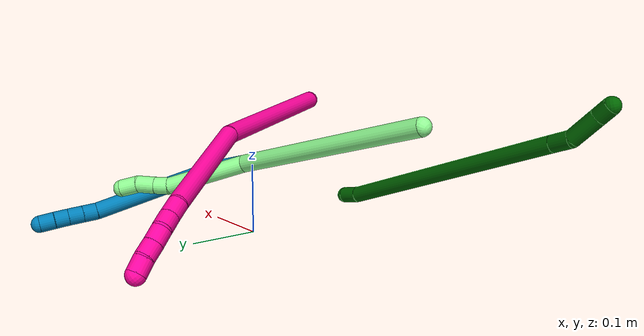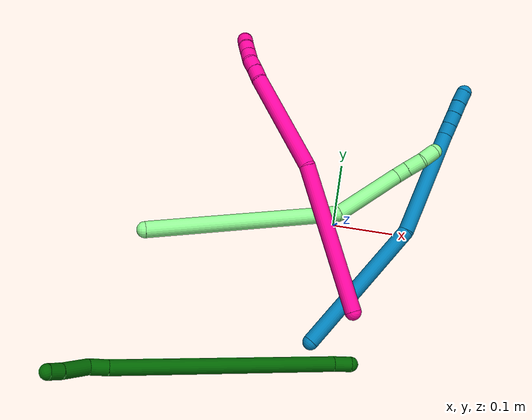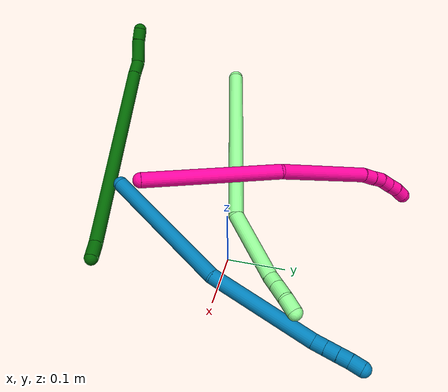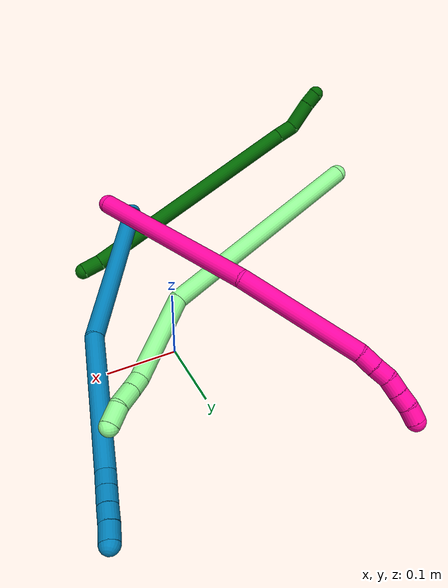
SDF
<sdf version="1.7">
 <world name="default">
  <model name="photoneo_s_sensor">
   <static>1</static>
   <pose>0 0 2 1.57079 1.57079 3.14159</pose>
   <link name="link">
    <inertial><mass>0.1</mass></inertial>
    <sensor name="sensor" type="depth">
     <update_rate>30</update_rate>
     <camera>
      <horizontal_fov>1.22</horizontal_fov>
      <image><width>1920</width><height>1200</height><format>B8G8R8</format></image>
      <clip><near>0.1</near><far>4</far></clip>
      <depth_camera><output>points</output></depth_camera>
     </camera>
     <plugin name="camera_plugin" filename="libgazebo_ros_depth_camera.so">
      <baseline>0.2</baseline>
      <alwaysOn>1</alwaysOn>
      <updateRate>0.0</updateRate>
      <cameraName>camera_ir</cameraName>
      <imageTopicName>/camera/color/image_raw</imageTopicName>
      <cameraInfoTopicName>/camera/color/camera_info</cameraInfoTopicName>
      <depthImageTopicName>/camera/depth/image_raw</depthImageTopicName>
      <depthImageCameraInfoTopicName>/camera/depth/camera_info</depthImageCameraInfoTopicName>
      <pointCloudTopicName>/camera/depth/points</pointCloudTopicName>
      <frameName>fr_optical</frameName>
      <pointCloudCutoff>0.1</pointCloudCutoff>
      <pointCloudCutoffMax>2.0</pointCloudCutoffMax>
      <distortionK1>0</distortionK1>
      <distortionK2>0</distortionK2>
      <distortionK3>0</distortionK3>
      <distortionT1>0</distortionT1>
      <distortionT2>0</distortionT2>
      <CxPrime>0</CxPrime>
      <Cx>0</Cx>
      <Cy>0</Cy>
      <focalLength>0</focalLength>
      <hackBaseline>0</hackBaseline>
     </plugin>
    </sensor>
   </link>
  </model>
  <model name="bin">
   <static>1</static>
   <link name="bottom">
    <collision name="collision-bottom">
     <pose>0 0 -0.01 0 -0 0</pose>
     <geometry><box><size>0.8 0.6 0.02</size></box></geometry>
     <surface>
      <friction><ode><mu>100</mu><mu2>100</mu2></ode></friction>
      <contact><collide_bitmask>65535</collide_bitmask></contact>
     </surface>
    </collision>
   </link>
   <link name="west_wall">
    <collision name="collision-west_wall">
     <pose>-0.41 0 0.1 0 -0 0</pose>
     <geometry><box><size>0.02 0.6 0.2</size></box></geometry>
     <surface>
      <friction><ode><mu>100</mu><mu2>100</mu2></ode></friction>
      <contact><collide_bitmask>65535</collide_bitmask></contact>
     </surface>
    </collision>
   </link>
   <link name="east_wall">
    <collision name="collision-east_wall">
     <pose>0.41 0 0.1 0 -0 0</pose>
     <geometry><box><size>0.02 0.6 0.2</size></box></geometry>
     <surface>
      <friction><ode><mu>100</mu><mu2>100</mu2></ode></friction>
      <contact><collide_bitmask>65535</collide_bitmask></contact>
     </surface>
    </collision>
   </link>
   <link name="south_wall">
    <collision name="collision-south_wall">
     <pose>0 -0.31 0.1 0 -0 0</pose>
     <geometry><box><size>0.8 0.02 0.2</size></box></geometry>
     <surface>
      <friction><ode><mu>100</mu><mu2>100</mu2></ode></friction>
      <contact><collide_bitmask>65535</collide_bitmask></contact>
     </surface>
    </collision>
   </link>
   <link name="north_wall">
    <collision name="collision-north_wall">
     <pose>0 0.31 0.1 0 -0 0</pose>
     <geometry><box><size>0.8 0.02 0.2</size></box></geometry>
     <surface>
      <friction><ode><mu>100</mu><mu2>100</mu2></ode></friction>
      <contact><collide_bitmask>65535</collide_bitmask></contact>
     </surface>
    </collision>
   </link>
  </model>
  <model name="6">
   <static>0</static>
   <link name="6">
    <collision name="collision-cylinder-e_1_1_4">
     <pose>-0.004829 -0.003568 0.013738 0.254129 -0.327934 -0.042268</pose>
     <geometry><cylinder><radius>0.0125</radius><length>0.029986</length></cylinder></geometry>
     <surface>
      <friction><ode><mu>1.16</mu><mu2>1.16</mu2><slip1>0</slip1><slip2>0</slip2></ode></friction>
      <contact><ode><kp>1e+06</kp><kd>1</kd><max_vel>0</max_vel><min_depth>0.001</min_depth></ode></contact>
     </surface>
    </collision>
    <visual name="visual-cylinder-e_1_1_4">
     <pose>-0.004829 -0.003568 0.013738 0.254129 -0.327934 -0.042268</pose>
     <geometry><cylinder><radius>0.0125</radius><length>0.029986</length></cylinder></geometry>
     <material><ambient>0 0.392157 0.003922 1</ambient></material>
    </visual>
    <collision name="collision-cylinder-e_2_4_5">
     <pose>-0.079361 -0.023447 0.198653 0.094996 -0.385119 -0.018535</pose>
     <geometry><cylinder><radius>0.0125</radius><length>0.371084</length></cylinder></geometry>
     <surface>
      <friction><ode><mu>1.16</mu><mu2>1.16</mu2><slip1>0</slip1><slip2>0</slip2></ode></friction>
      <contact><ode><kp>1e+06</kp><kd>1</kd><max_vel>0</max_vel><min_depth>0.001</min_depth></ode></contact>
     </surface>
    </collision>
    <visual name="visual-cylinder-e_2_4_5">
     <pose>-0.079361 -0.023447 0.198653 0.094996 -0.385119 -0.018535</pose>
     <geometry><cylinder><radius>0.0125</radius><length>0.371084</length></cylinder></geometry>
     <material><ambient>0 0.392157 0.003922 1</ambient></material>
    </visual>
    <collision name="collision-cylinder-e_3_5_6">
     <pose>-0.155457 -0.041521 0.383361 0.129631 -0.438204 -0.028904</pose>
     <geometry><cylinder><radius>0.0125</radius><length>0.030139</length></cylinder></geometry>
     <surface>
      <friction><ode><mu>1.16</mu><mu2>1.16</mu2><slip1>0</slip1><slip2>0</slip2></ode></friction>
      <contact><ode><kp>1e+06</kp><kd>1</kd><max_vel>0</max_vel><min_depth>0.001</min_depth></ode></contact>
     </surface>
    </collision>
    <visual name="visual-cylinder-e_3_5_6">
     <pose>-0.155457 -0.041521 0.383361 0.129631 -0.438204 -0.028904</pose>
     <geometry><cylinder><radius>0.0125</radius><length>0.030139</length></cylinder></geometry>
     <material><ambient>0 0.392157 0.003922 1</ambient></material>
    </visual>
    <collision name="collision-cylinder-e_4_6_7">
     <pose>-0.171754 -0.03587 0.416288 -0.365124 -0.444973 0.083484</pose>
     <geometry><cylinder><radius>0.0125</radius><length>0.046011</length></cylinder></geometry>
     <surface>
      <friction><ode><mu>1.16</mu><mu2>1.16</mu2><slip1>0</slip1><slip2>0</slip2></ode></friction>
      <contact><ode><kp>1e+06</kp><kd>1</kd><max_vel>0</max_vel><min_depth>0.001</min_depth></ode></contact>
     </surface>
    </collision>
    <visual name="visual-cylinder-e_4_6_7">
     <pose>-0.171754 -0.03587 0.416288 -0.365124 -0.444973 0.083484</pose>
     <geometry><cylinder><radius>0.0125</radius><length>0.046011</length></cylinder></geometry>
     <material><ambient>0 0.392157 0.003922 1</ambient></material>
    </visual>
    <collision name="collision-cylinder-e_5_7_2">
     <pose>-0.187544 -0.025486 0.444972 -0.309536 -0.543233 0.086846</pose>
     <geometry><cylinder><radius>0.0125</radius><length>0.022779</length></cylinder></geometry>
     <surface>
      <friction><ode><mu>1.16</mu><mu2>1.16</mu2><slip1>0</slip1><slip2>0</slip2></ode></friction>
      <contact><ode><kp>1e+06</kp><kd>1</kd><max_vel>0</max_vel><min_depth>0.001</min_depth></ode></contact>
     </surface>
    </collision>
    <visual name="visual-cylinder-e_5_7_2">
     <pose>-0.187544 -0.025486 0.444972 -0.309536 -0.543233 0.086846</pose>
     <geometry><cylinder><radius>0.0125</radius><length>0.022779</length></cylinder></geometry>
     <material><ambient>0 0.392157 0.003922 1</ambient></material>
    </visual>
    <collision name="collision-sphere-2">
     <pose>-0.193431 -0.022516 0.454258 0 -0 0</pose>
     <geometry><sphere><radius>0.0125</radius></sphere></geometry>
     <surface>
      <friction><ode><mu>1.16</mu><mu2>1.16</mu2><slip1>0</slip1><slip2>0</slip2></ode></friction>
      <contact><ode><kp>1e+06</kp><kd>1</kd><max_vel>0</max_vel><min_depth>0.001</min_depth></ode></contact>
     </surface>
    </collision>
    <visual name="visual-sphere-2">
     <pose>-0.193431 -0.022516 0.454258 0 -0 0</pose>
     <geometry><sphere><radius>0.0125</radius></sphere></geometry>
     <material><ambient>0 0.392157 0.003922 1</ambient></material>
    </visual>
    <collision name="collision-sphere-7">
     <pose>-0.181656 -0.028456 0.435685 0 -0 0</pose>
     <geometry><sphere><radius>0.0125</radius></sphere></geometry>
     <surface>
      <friction><ode><mu>1.16</mu><mu2>1.16</mu2><slip1>0</slip1><slip2>0</slip2></ode></friction>
      <contact><ode><kp>1e+06</kp><kd>1</kd><max_vel>0</max_vel><min_depth>0.001</min_depth></ode></contact>
     </surface>
    </collision>
    <visual name="visual-sphere-7">
     <pose>-0.181656 -0.028456 0.435685 0 -0 0</pose>
     <geometry><sphere><radius>0.0125</radius></sphere></geometry>
     <material><ambient>0 0.392157 0.003922 1</ambient></material>
    </visual>
    <collision name="collision-sphere-6">
     <pose>-0.161852 -0.043285 0.396892 0 -0 0</pose>
     <geometry><sphere><radius>0.0125</radius></sphere></geometry>
     <surface>
      <friction><ode><mu>1.16</mu><mu2>1.16</mu2><slip1>0</slip1><slip2>0</slip2></ode></friction>
      <contact><ode><kp>1e+06</kp><kd>1</kd><max_vel>0</max_vel><min_depth>0.001</min_depth></ode></contact>
     </surface>
    </collision>
    <visual name="visual-sphere-6">
     <pose>-0.161852 -0.043285 0.396892 0 -0 0</pose>
     <geometry><sphere><radius>0.0125</radius></sphere></geometry>
     <material><ambient>0 0.392157 0.003922 1</ambient></material>
    </visual>
    <collision name="collision-sphere-5">
     <pose>-0.149063 -0.039757 0.36983 0 -0 0</pose>
     <geometry><sphere><radius>0.0125</radius></sphere></geometry>
     <surface>
      <friction><ode><mu>1.16</mu><mu2>1.16</mu2><slip1>0</slip1><slip2>0</slip2></ode></friction>
      <contact><ode><kp>1e+06</kp><kd>1</kd><max_vel>0</max_vel><min_depth>0.001</min_depth></ode></contact>
     </surface>
    </collision>
    <visual name="visual-sphere-5">
     <pose>-0.149063 -0.039757 0.36983 0 -0 0</pose>
     <geometry><sphere><radius>0.0125</radius></sphere></geometry>
     <material><ambient>0 0.392157 0.003922 1</ambient></material>
    </visual>
    <collision name="collision-sphere-1">
     <geometry><sphere><radius>0.0125</radius></sphere></geometry>
     <surface>
      <friction><ode><mu>1.16</mu><mu2>1.16</mu2><slip1>0</slip1><slip2>0</slip2></ode></friction>
      <contact><ode><kp>1e+06</kp><kd>1</kd><max_vel>0</max_vel><min_depth>0.001</min_depth></ode></contact>
     </surface>
    </collision>
    <visual name="visual-sphere-1">
     <geometry><sphere><radius>0.0125</radius></sphere></geometry>
     <material><ambient>0 0.392157 0.003922 1</ambient></material>
    </visual>
    <collision name="collision-sphere-4">
     <pose>-0.009658 -0.007137 0.027477 0 -0 0</pose>
     <geometry><sphere><radius>0.0125</radius></sphere></geometry>
     <surface>
      <friction><ode><mu>1.16</mu><mu2>1.16</mu2><slip1>0</slip1><slip2>0</slip2></ode></friction>
      <contact><ode><kp>1e+06</kp><kd>1</kd><max_vel>0</max_vel><min_depth>0.001</min_depth></ode></contact>
     </surface>
    </collision>
    <visual name="visual-sphere-4">
     <pose>-0.009658 -0.007137 0.027477 0 -0 0</pose>
     <geometry><sphere><radius>0.0125</radius></sphere></geometry>
     <material><ambient>0 0.392157 0.003922 1</ambient></material>
    </visual>
    <inertial>
     <pose>-0.092909 -0.02458 0.229946 0 -0 0</pose>
     <mass>0.5</mass>
     <inertia>
      <ixx>0.003888</ixx>
      <ixy>0</ixy>
      <ixz>0</ixz>
      <iyy>0.004199</iyy>
      <iyz>0</iyz>
      <izz>0.002022</izz>
     </inertia>
    </inertial>
   </link>
   <pose>0.061751 -0.223973 0.011529 1.26748 0.503784 -1.19303</pose>
  </model>
  <model name="9">
   <static>0</static>
   <link name="9">
    <collision name="collision-cylinder-e_1_1_4">
     <pose>0.008374 -0.001356 0.116958 0.011593 0.071474 0.000414</pose>
     <geometry><cylinder><radius>0.0125</radius><length>0.23453</length></cylinder></geometry>
     <surface>
      <friction><ode><mu>1.16</mu><mu2>1.16</mu2><slip1>0</slip1><slip2>0</slip2></ode></friction>
      <contact><ode><kp>1e+06</kp><kd>1</kd><max_vel>0</max_vel><min_depth>0.001</min_depth></ode></contact>
     </surface>
    </collision>
    <visual name="visual-cylinder-e_1_1_4">
     <pose>0.008374 -0.001356 0.116958 0.011593 0.071474 0.000414</pose>
     <geometry><cylinder><radius>0.0125</radius><length>0.23453</length></cylinder></geometry>
     <material><ambient>0 0.490196 0.709804 1</ambient></material>
    </visual>
    <collision name="collision-cylinder-e_2_4_5">
     <pose>0.014217 0.022747 0.321392 -0.283211 -0.027781 0.003961</pose>
     <geometry><cylinder><radius>0.0125</radius><length>0.182284</length></cylinder></geometry>
     <surface>
      <friction><ode><mu>1.16</mu><mu2>1.16</mu2><slip1>0</slip1><slip2>0</slip2></ode></friction>
      <contact><ode><kp>1e+06</kp><kd>1</kd><max_vel>0</max_vel><min_depth>0.001</min_depth></ode></contact>
     </surface>
    </collision>
    <visual name="visual-cylinder-e_2_4_5">
     <pose>0.014217 0.022747 0.321392 -0.283211 -0.027781 0.003961</pose>
     <geometry><cylinder><radius>0.0125</radius><length>0.182284</length></cylinder></geometry>
     <material><ambient>0 0.490196 0.709804 1</ambient></material>
    </visual>
    <collision name="collision-cylinder-e_3_5_6">
     <pose>0.010219 0.050167 0.418648 -0.197927 -0.145978 0.014519</pose>
     <geometry><cylinder><radius>0.0125</radius><length>0.02016</length></cylinder></geometry>
     <surface>
      <friction><ode><mu>1.16</mu><mu2>1.16</mu2><slip1>0</slip1><slip2>0</slip2></ode></friction>
      <contact><ode><kp>1e+06</kp><kd>1</kd><max_vel>0</max_vel><min_depth>0.001</min_depth></ode></contact>
     </surface>
    </collision>
    <visual name="visual-cylinder-e_3_5_6">
     <pose>0.010219 0.050167 0.418648 -0.197927 -0.145978 0.014519</pose>
     <geometry><cylinder><radius>0.0125</radius><length>0.02016</length></cylinder></geometry>
     <material><ambient>0 0.490196 0.709804 1</ambient></material>
    </visual>
    <collision name="collision-cylinder-e_4_6_7">
     <pose>0.007209 0.054195 0.438751 -0.197539 -0.14558 0.014451</pose>
     <geometry><cylinder><radius>0.0125</radius><length>0.021285</length></cylinder></geometry>
     <surface>
      <friction><ode><mu>1.16</mu><mu2>1.16</mu2><slip1>0</slip1><slip2>0</slip2></ode></friction>
      <contact><ode><kp>1e+06</kp><kd>1</kd><max_vel>0</max_vel><min_depth>0.001</min_depth></ode></contact>
     </surface>
    </collision>
    <visual name="visual-cylinder-e_4_6_7">
     <pose>0.007209 0.054195 0.438751 -0.197539 -0.14558 0.014451</pose>
     <geometry><cylinder><radius>0.0125</radius><length>0.021285</length></cylinder></geometry>
     <material><ambient>0 0.490196 0.709804 1</ambient></material>
    </visual>
    <collision name="collision-cylinder-e_5_7_8">
     <pose>0.004256 0.0585 0.458794 -0.226439 -0.14035 0.015984</pose>
     <geometry><cylinder><radius>0.0125</radius><length>0.020144</length></cylinder></geometry>
     <surface>
      <friction><ode><mu>1.16</mu><mu2>1.16</mu2><slip1>0</slip1><slip2>0</slip2></ode></friction>
      <contact><ode><kp>1e+06</kp><kd>1</kd><max_vel>0</max_vel><min_depth>0.001</min_depth></ode></contact>
     </surface>
    </collision>
    <visual name="visual-cylinder-e_5_7_8">
     <pose>0.004256 0.0585 0.458794 -0.226439 -0.14035 0.015984</pose>
     <geometry><cylinder><radius>0.0125</radius><length>0.020144</length></cylinder></geometry>
     <material><ambient>0 0.490196 0.709804 1</ambient></material>
    </visual>
    <collision name="collision-cylinder-e_6_8_2">
     <pose>0.001977 0.062779 0.479082 -0.19064 -0.080628 0.007713</pose>
     <geometry><cylinder><radius>0.0125</radius><length>0.021598</length></cylinder></geometry>
     <surface>
      <friction><ode><mu>1.16</mu><mu2>1.16</mu2><slip1>0</slip1><slip2>0</slip2></ode></friction>
      <contact><ode><kp>1e+06</kp><kd>1</kd><max_vel>0</max_vel><min_depth>0.001</min_depth></ode></contact>
     </surface>
    </collision>
    <visual name="visual-cylinder-e_6_8_2">
     <pose>0.001977 0.062779 0.479082 -0.19064 -0.080628 0.007713</pose>
     <geometry><cylinder><radius>0.0125</radius><length>0.021598</length></cylinder></geometry>
     <material><ambient>0 0.490196 0.709804 1</ambient></material>
    </visual>
    <collision name="collision-sphere-2">
     <pose>0.001107 0.064818 0.48965 0 -0 0</pose>
     <geometry><sphere><radius>0.0125</radius></sphere></geometry>
     <surface>
      <friction><ode><mu>1.16</mu><mu2>1.16</mu2><slip1>0</slip1><slip2>0</slip2></ode></friction>
      <contact><ode><kp>1e+06</kp><kd>1</kd><max_vel>0</max_vel><min_depth>0.001</min_depth></ode></contact>
     </surface>
    </collision>
    <visual name="visual-sphere-2">
     <pose>0.001107 0.064818 0.48965 0 -0 0</pose>
     <geometry><sphere><radius>0.0125</radius></sphere></geometry>
     <material><ambient>0 0.490196 0.709804 1</ambient></material>
    </visual>
    <collision name="collision-sphere-4">
     <pose>0.016749 -0.002712 0.233915 0 -0 0</pose>
     <geometry><sphere><radius>0.0125</radius></sphere></geometry>
     <surface>
      <friction><ode><mu>1.16</mu><mu2>1.16</mu2><slip1>0</slip1><slip2>0</slip2></ode></friction>
      <contact><ode><kp>1e+06</kp><kd>1</kd><max_vel>0</max_vel><min_depth>0.001</min_depth></ode></contact>
     </surface>
    </collision>
    <visual name="visual-sphere-4">
     <pose>0.016749 -0.002712 0.233915 0 -0 0</pose>
     <geometry><sphere><radius>0.0125</radius></sphere></geometry>
     <material><ambient>0 0.490196 0.709804 1</ambient></material>
    </visual>
    <collision name="collision-sphere-1">
     <geometry><sphere><radius>0.0125</radius></sphere></geometry>
     <surface>
      <friction><ode><mu>1.16</mu><mu2>1.16</mu2><slip1>0</slip1><slip2>0</slip2></ode></friction>
      <contact><ode><kp>1e+06</kp><kd>1</kd><max_vel>0</max_vel><min_depth>0.001</min_depth></ode></contact>
     </surface>
    </collision>
    <visual name="visual-sphere-1">
     <geometry><sphere><radius>0.0125</radius></sphere></geometry>
     <material><ambient>0 0.490196 0.709804 1</ambient></material>
    </visual>
    <collision name="collision-sphere-8">
     <pose>0.002847 0.060739 0.468513 0 -0 0</pose>
     <geometry><sphere><radius>0.0125</radius></sphere></geometry>
     <surface>
      <friction><ode><mu>1.16</mu><mu2>1.16</mu2><slip1>0</slip1><slip2>0</slip2></ode></friction>
      <contact><ode><kp>1e+06</kp><kd>1</kd><max_vel>0</max_vel><min_depth>0.001</min_depth></ode></contact>
     </surface>
    </collision>
    <visual name="visual-sphere-8">
     <pose>0.002847 0.060739 0.468513 0 -0 0</pose>
     <geometry><sphere><radius>0.0125</radius></sphere></geometry>
     <material><ambient>0 0.490196 0.709804 1</ambient></material>
    </visual>
    <collision name="collision-sphere-5">
     <pose>0.011685 0.048206 0.40887 0 -0 0</pose>
     <geometry><sphere><radius>0.0125</radius></sphere></geometry>
     <surface>
      <friction><ode><mu>1.16</mu><mu2>1.16</mu2><slip1>0</slip1><slip2>0</slip2></ode></friction>
      <contact><ode><kp>1e+06</kp><kd>1</kd><max_vel>0</max_vel><min_depth>0.001</min_depth></ode></contact>
     </surface>
    </collision>
    <visual name="visual-sphere-5">
     <pose>0.011685 0.048206 0.40887 0 -0 0</pose>
     <geometry><sphere><radius>0.0125</radius></sphere></geometry>
     <material><ambient>0 0.490196 0.709804 1</ambient></material>
    </visual>
    <collision name="collision-sphere-6">
     <pose>0.008753 0.052128 0.428425 0 -0 0</pose>
     <geometry><sphere><radius>0.0125</radius></sphere></geometry>
     <surface>
      <friction><ode><mu>1.16</mu><mu2>1.16</mu2><slip1>0</slip1><slip2>0</slip2></ode></friction>
      <contact><ode><kp>1e+06</kp><kd>1</kd><max_vel>0</max_vel><min_depth>0.001</min_depth></ode></contact>
     </surface>
    </collision>
    <visual name="visual-sphere-6">
     <pose>0.008753 0.052128 0.428425 0 -0 0</pose>
     <geometry><sphere><radius>0.0125</radius></sphere></geometry>
     <material><ambient>0 0.490196 0.709804 1</ambient></material>
    </visual>
    <collision name="collision-sphere-7">
     <pose>0.005665 0.056261 0.449076 0 -0 0</pose>
     <geometry><sphere><radius>0.0125</radius></sphere></geometry>
     <surface>
      <friction><ode><mu>1.16</mu><mu2>1.16</mu2><slip1>0</slip1><slip2>0</slip2></ode></friction>
      <contact><ode><kp>1e+06</kp><kd>1</kd><max_vel>0</max_vel><min_depth>0.001</min_depth></ode></contact>
     </surface>
    </collision>
    <visual name="visual-sphere-7">
     <pose>0.005665 0.056261 0.449076 0 -0 0</pose>
     <geometry><sphere><radius>0.0125</radius></sphere></geometry>
     <material><ambient>0 0.490196 0.709804 1</ambient></material>
    </visual>
    <inertial>
     <pose>0.010087 0.017055 0.246765 0 -0 0</pose>
     <mass>0.5</mass>
     <inertia>
      <ixx>0.001602</ixx>
      <ixy>0</ixy>
      <ixz>0</ixz>
      <iyy>0.001589</iyy>
      <iyz>0</iyz>
      <izz>-0.000156</izz>
     </inertia>
    </inertial>
   </link>
   <pose>-0.015243 -0.18789 0.120003 -1.81686 0.945577 -0.733025</pose>
  </model>
  <model name="13">
   <static>0</static>
   <link name="13">
    <collision name="collision-cylinder-e_1_1_4">
     <pose>0.043556 0.061212 -0.132065 -2.70757 0.290748 -1.17234</pose>
     <geometry><cylinder><radius>0.0125</radius><length>0.303876</length></cylinder></geometry>
     <surface>
      <friction><ode><mu>1.16</mu><mu2>1.16</mu2><slip1>0</slip1><slip2>0</slip2></ode></friction>
      <contact><ode><kp>1e+06</kp><kd>1</kd><max_vel>0</max_vel><min_depth>0.001</min_depth></ode></contact>
     </surface>
    </collision>
    <visual name="visual-cylinder-e_1_1_4">
     <pose>0.043556 0.061212 -0.132065 -2.70757 0.290748 -1.17234</pose>
     <geometry><cylinder><radius>0.0125</radius><length>0.303876</length></cylinder></geometry>
     <material><ambient>0.564706 0.984314 0.572549 1</ambient></material>
    </visual>
    <collision name="collision-cylinder-e_2_4_5">
     <pose>0.128152 0.138155 -0.305091 -2.7749 0.751995 -2.26336</pose>
     <geometry><cylinder><radius>0.0125</radius><length>0.12016</length></cylinder></geometry>
     <surface>
      <friction><ode><mu>1.16</mu><mu2>1.16</mu2><slip1>0</slip1><slip2>0</slip2></ode></friction>
      <contact><ode><kp>1e+06</kp><kd>1</kd><max_vel>0</max_vel><min_depth>0.001</min_depth></ode></contact>
     </surface>
    </collision>
    <visual name="visual-cylinder-e_2_4_5">
     <pose>0.128152 0.138155 -0.305091 -2.7749 0.751995 -2.26336</pose>
     <geometry><cylinder><radius>0.0125</radius><length>0.12016</length></cylinder></geometry>
     <material><ambient>0.564706 0.984314 0.572549 1</ambient></material>
    </visual>
    <collision name="collision-cylinder-e_3_5_6">
     <pose>0.175491 0.153732 -0.354629 3.12357 0.633266 3.0866</pose>
     <geometry><cylinder><radius>0.0125</radius><length>0.021284</length></cylinder></geometry>
     <surface>
      <friction><ode><mu>1.16</mu><mu2>1.16</mu2><slip1>0</slip1><slip2>0</slip2></ode></friction>
      <contact><ode><kp>1e+06</kp><kd>1</kd><max_vel>0</max_vel><min_depth>0.001</min_depth></ode></contact>
     </surface>
    </collision>
    <visual name="visual-cylinder-e_3_5_6">
     <pose>0.175491 0.153732 -0.354629 3.12357 0.633266 3.0866</pose>
     <geometry><cylinder><radius>0.0125</radius><length>0.021284</length></cylinder></geometry>
     <material><ambient>0.564706 0.984314 0.572549 1</ambient></material>
    </visual>
    <collision name="collision-cylinder-e_4_6_7">
     <pose>0.189696 0.153199 -0.374634 3.10851 0.605093 3.03568</pose>
     <geometry><cylinder><radius>0.0125</radius><length>0.027804</length></cylinder></geometry>
     <surface>
      <friction><ode><mu>1.16</mu><mu2>1.16</mu2><slip1>0</slip1><slip2>0</slip2></ode></friction>
      <contact><ode><kp>1e+06</kp><kd>1</kd><max_vel>0</max_vel><min_depth>0.001</min_depth></ode></contact>
     </surface>
    </collision>
    <visual name="visual-cylinder-e_4_6_7">
     <pose>0.189696 0.153199 -0.374634 3.10851 0.605093 3.03568</pose>
     <geometry><cylinder><radius>0.0125</radius><length>0.027804</length></cylinder></geometry>
     <material><ambient>0.564706 0.984314 0.572549 1</ambient></material>
    </visual>
    <collision name="collision-cylinder-e_5_7_2">
     <pose>0.207107 0.155477 -0.395184 -2.85826 0.785485 -2.47847</pose>
     <geometry><cylinder><radius>0.0125</radius><length>0.026875</length></cylinder></geometry>
     <surface>
      <friction><ode><mu>1.16</mu><mu2>1.16</mu2><slip1>0</slip1><slip2>0</slip2></ode></friction>
      <contact><ode><kp>1e+06</kp><kd>1</kd><max_vel>0</max_vel><min_depth>0.001</min_depth></ode></contact>
     </surface>
    </collision>
    <visual name="visual-cylinder-e_5_7_2">
     <pose>0.207107 0.155477 -0.395184 -2.85826 0.785485 -2.47847</pose>
     <geometry><cylinder><radius>0.0125</radius><length>0.026875</length></cylinder></geometry>
     <material><ambient>0.564706 0.984314 0.572549 1</ambient></material>
    </visual>
    <collision name="collision-sphere-2">
     <pose>0.21661 0.158133 -0.404306 0 -0 0</pose>
     <geometry><sphere><radius>0.0125</radius></sphere></geometry>
     <surface>
      <friction><ode><mu>1.16</mu><mu2>1.16</mu2><slip1>0</slip1><slip2>0</slip2></ode></friction>
      <contact><ode><kp>1e+06</kp><kd>1</kd><max_vel>0</max_vel><min_depth>0.001</min_depth></ode></contact>
     </surface>
    </collision>
    <visual name="visual-sphere-2">
     <pose>0.21661 0.158133 -0.404306 0 -0 0</pose>
     <geometry><sphere><radius>0.0125</radius></sphere></geometry>
     <material><ambient>0.564706 0.984314 0.572549 1</ambient></material>
    </visual>
    <collision name="collision-sphere-7">
     <pose>0.197604 0.152821 -0.386061 0 -0 0</pose>
     <geometry><sphere><radius>0.0125</radius></sphere></geometry>
     <surface>
      <friction><ode><mu>1.16</mu><mu2>1.16</mu2><slip1>0</slip1><slip2>0</slip2></ode></friction>
      <contact><ode><kp>1e+06</kp><kd>1</kd><max_vel>0</max_vel><min_depth>0.001</min_depth></ode></contact>
     </surface>
    </collision>
    <visual name="visual-sphere-7">
     <pose>0.197604 0.152821 -0.386061 0 -0 0</pose>
     <geometry><sphere><radius>0.0125</radius></sphere></geometry>
     <material><ambient>0.564706 0.984314 0.572549 1</ambient></material>
    </visual>
    <collision name="collision-sphere-6">
     <pose>0.181789 0.153578 -0.363207 0 -0 0</pose>
     <geometry><sphere><radius>0.0125</radius></sphere></geometry>
     <surface>
      <friction><ode><mu>1.16</mu><mu2>1.16</mu2><slip1>0</slip1><slip2>0</slip2></ode></friction>
      <contact><ode><kp>1e+06</kp><kd>1</kd><max_vel>0</max_vel><min_depth>0.001</min_depth></ode></contact>
     </surface>
    </collision>
    <visual name="visual-sphere-6">
     <pose>0.181789 0.153578 -0.363207 0 -0 0</pose>
     <geometry><sphere><radius>0.0125</radius></sphere></geometry>
     <material><ambient>0.564706 0.984314 0.572549 1</ambient></material>
    </visual>
    <collision name="collision-sphere-5">
     <pose>0.169193 0.153887 -0.346052 0 -0 0</pose>
     <geometry><sphere><radius>0.0125</radius></sphere></geometry>
     <surface>
      <friction><ode><mu>1.16</mu><mu2>1.16</mu2><slip1>0</slip1><slip2>0</slip2></ode></friction>
      <contact><ode><kp>1e+06</kp><kd>1</kd><max_vel>0</max_vel><min_depth>0.001</min_depth></ode></contact>
     </surface>
    </collision>
    <visual name="visual-sphere-5">
     <pose>0.169193 0.153887 -0.346052 0 -0 0</pose>
     <geometry><sphere><radius>0.0125</radius></sphere></geometry>
     <material><ambient>0.564706 0.984314 0.572549 1</ambient></material>
    </visual>
    <collision name="collision-sphere-1">
     <geometry><sphere><radius>0.0125</radius></sphere></geometry>
     <surface>
      <friction><ode><mu>1.16</mu><mu2>1.16</mu2><slip1>0</slip1><slip2>0</slip2></ode></friction>
      <contact><ode><kp>1e+06</kp><kd>1</kd><max_vel>0</max_vel><min_depth>0.001</min_depth></ode></contact>
     </surface>
    </collision>
    <visual name="visual-sphere-1">
     <geometry><sphere><radius>0.0125</radius></sphere></geometry>
     <material><ambient>0.564706 0.984314 0.572549 1</ambient></material>
    </visual>
    <collision name="collision-sphere-4">
     <pose>0.087112 0.122424 -0.26413 0 -0 0</pose>
     <geometry><sphere><radius>0.0125</radius></sphere></geometry>
     <surface>
      <friction><ode><mu>1.16</mu><mu2>1.16</mu2><slip1>0</slip1><slip2>0</slip2></ode></friction>
      <contact><ode><kp>1e+06</kp><kd>1</kd><max_vel>0</max_vel><min_depth>0.001</min_depth></ode></contact>
     </surface>
    </collision>
    <visual name="visual-sphere-4">
     <pose>0.087112 0.122424 -0.26413 0 -0 0</pose>
     <geometry><sphere><radius>0.0125</radius></sphere></geometry>
     <material><ambient>0.564706 0.984314 0.572549 1</ambient></material>
    </visual>
    <inertial>
     <pose>0.08642 0.093824 -0.210753 0 -0 0</pose>
     <mass>0.5</mass>
     <inertia>
      <ixx>-0.001344</ixx>
      <ixy>0</ixy>
      <ixz>0</ixz>
      <iyy>-0.00259</iyy>
      <iyz>0</iyz>
      <izz>-0.001798</izz>
     </inertia>
    </inertial>
   </link>
   <pose>-0.284953 -0.055657 0.186401 -1.81074 0.346272 1.59744</pose>
  </model>
  <model name="18">
   <static>0</static>
   <link name="18">
    <collision name="collision-cylinder-e_1_1_4">
     <pose>-0.029991 0.107902 0.023544 -1.35597 -0.265163 0.213984</pose>
     <geometry><cylinder><radius>0.0125</radius><length>0.228881</length></cylinder></geometry>
     <surface>
      <friction><ode><mu>1.16</mu><mu2>1.16</mu2><slip1>0</slip1><slip2>0</slip2></ode></friction>
      <contact><ode><kp>1e+06</kp><kd>1</kd><max_vel>0</max_vel><min_depth>0.001</min_depth></ode></contact>
     </surface>
    </collision>
    <visual name="visual-cylinder-e_1_1_4">
     <pose>-0.029991 0.107902 0.023544 -1.35597 -0.265163 0.213984</pose>
     <geometry><cylinder><radius>0.0125</radius><length>0.228881</length></cylinder></geometry>
     <material><ambient>1 0.007843 0.615686 1</ambient></material>
    </visual>
    <collision name="collision-cylinder-e_2_4_5">
     <pose>-0.08335 0.295956 0.038991 -1.67148 -0.282315 0.311813</pose>
     <geometry><cylinder><radius>0.0125</radius><length>0.167761</length></cylinder></geometry>
     <surface>
      <friction><ode><mu>1.16</mu><mu2>1.16</mu2><slip1>0</slip1><slip2>0</slip2></ode></friction>
      <contact><ode><kp>1e+06</kp><kd>1</kd><max_vel>0</max_vel><min_depth>0.001</min_depth></ode></contact>
     </surface>
    </collision>
    <visual name="visual-cylinder-e_2_4_5">
     <pose>-0.08335 0.295956 0.038991 -1.67148 -0.282315 0.311813</pose>
     <geometry><cylinder><radius>0.0125</radius><length>0.167761</length></cylinder></geometry>
     <material><ambient>1 0.007843 0.615686 1</ambient></material>
    </visual>
    <collision name="collision-cylinder-e_3_5_6">
     <pose>-0.107824 0.387164 0.028676 -1.76873 -0.097847 0.119374</pose>
     <geometry><cylinder><radius>0.0125</radius><length>0.022661</length></cylinder></geometry>
     <surface>
      <friction><ode><mu>1.16</mu><mu2>1.16</mu2><slip1>0</slip1><slip2>0</slip2></ode></friction>
      <contact><ode><kp>1e+06</kp><kd>1</kd><max_vel>0</max_vel><min_depth>0.001</min_depth></ode></contact>
     </surface>
    </collision>
    <visual name="visual-cylinder-e_3_5_6">
     <pose>-0.107824 0.387164 0.028676 -1.76873 -0.097847 0.119374</pose>
     <geometry><cylinder><radius>0.0125</radius><length>0.022661</length></cylinder></geometry>
     <material><ambient>1 0.007843 0.615686 1</ambient></material>
    </visual>
    <collision name="collision-cylinder-e_4_6_7">
     <pose>-0.110622 0.408049 0.024378 -1.77938 -0.16677 0.205515</pose>
     <geometry><cylinder><radius>0.0125</radius><length>0.020376</length></cylinder></geometry>
     <surface>
      <friction><ode><mu>1.16</mu><mu2>1.16</mu2><slip1>0</slip1><slip2>0</slip2></ode></friction>
      <contact><ode><kp>1e+06</kp><kd>1</kd><max_vel>0</max_vel><min_depth>0.001</min_depth></ode></contact>
     </surface>
    </collision>
    <visual name="visual-cylinder-e_4_6_7">
     <pose>-0.110622 0.408049 0.024378 -1.77938 -0.16677 0.205515</pose>
     <geometry><cylinder><radius>0.0125</radius><length>0.020376</length></cylinder></geometry>
     <material><ambient>1 0.007843 0.615686 1</ambient></material>
    </visual>
    <collision name="collision-cylinder-e_5_7_8">
     <pose>-0.111238 0.427415 0.019275 -1.87769 0.107053 -0.146106</pose>
     <geometry><cylinder><radius>0.0125</radius><length>0.020124</length></cylinder></geometry>
     <surface>
      <friction><ode><mu>1.16</mu><mu2>1.16</mu2><slip1>0</slip1><slip2>0</slip2></ode></friction>
      <contact><ode><kp>1e+06</kp><kd>1</kd><max_vel>0</max_vel><min_depth>0.001</min_depth></ode></contact>
     </surface>
    </collision>
    <visual name="visual-cylinder-e_5_7_8">
     <pose>-0.111238 0.427415 0.019275 -1.87769 0.107053 -0.146106</pose>
     <geometry><cylinder><radius>0.0125</radius><length>0.020124</length></cylinder></geometry>
     <material><ambient>1 0.007843 0.615686 1</ambient></material>
    </visual>
    <collision name="collision-cylinder-e_6_8_9">
     <pose>-0.109454 0.446601 0.01371 -1.82849 0.070941 -0.092034</pose>
     <geometry><cylinder><radius>0.0125</radius><length>0.020008</length></cylinder></geometry>
     <surface>
      <friction><ode><mu>1.16</mu><mu2>1.16</mu2><slip1>0</slip1><slip2>0</slip2></ode></friction>
      <contact><ode><kp>1e+06</kp><kd>1</kd><max_vel>0</max_vel><min_depth>0.001</min_depth></ode></contact>
     </surface>
    </collision>
    <visual name="visual-cylinder-e_6_8_9">
     <pose>-0.109454 0.446601 0.01371 -1.82849 0.070941 -0.092034</pose>
     <geometry><cylinder><radius>0.0125</radius><length>0.020008</length></cylinder></geometry>
     <material><ambient>1 0.007843 0.615686 1</ambient></material>
    </visual>
    <collision name="collision-cylinder-e_7_9_2">
     <pose>-0.106725 0.465352 0.007294 -1.97307 0.201391 -0.303237</pose>
     <geometry><cylinder><radius>0.0125</radius><length>0.020189</length></cylinder></geometry>
     <surface>
      <friction><ode><mu>1.16</mu><mu2>1.16</mu2><slip1>0</slip1><slip2>0</slip2></ode></friction>
      <contact><ode><kp>1e+06</kp><kd>1</kd><max_vel>0</max_vel><min_depth>0.001</min_depth></ode></contact>
     </surface>
    </collision>
    <visual name="visual-cylinder-e_7_9_2">
     <pose>-0.106725 0.465352 0.007294 -1.97307 0.201391 -0.303237</pose>
     <geometry><cylinder><radius>0.0125</radius><length>0.020189</length></cylinder></geometry>
     <material><ambient>1 0.007843 0.615686 1</ambient></material>
    </visual>
    <collision name="collision-sphere-2">
     <pose>-0.104706 0.474452 0.003422 0 -0 0</pose>
     <geometry><sphere><radius>0.0125</radius></sphere></geometry>
     <surface>
      <friction><ode><mu>1.16</mu><mu2>1.16</mu2><slip1>0</slip1><slip2>0</slip2></ode></friction>
      <contact><ode><kp>1e+06</kp><kd>1</kd><max_vel>0</max_vel><min_depth>0.001</min_depth></ode></contact>
     </surface>
    </collision>
    <visual name="visual-sphere-2">
     <pose>-0.104706 0.474452 0.003422 0 -0 0</pose>
     <geometry><sphere><radius>0.0125</radius></sphere></geometry>
     <material><ambient>1 0.007843 0.615686 1</ambient></material>
    </visual>
    <collision name="collision-sphere-9">
     <pose>-0.108745 0.456251 0.011167 0 -0 0</pose>
     <geometry><sphere><radius>0.0125</radius></sphere></geometry>
     <surface>
      <friction><ode><mu>1.16</mu><mu2>1.16</mu2><slip1>0</slip1><slip2>0</slip2></ode></friction>
      <contact><ode><kp>1e+06</kp><kd>1</kd><max_vel>0</max_vel><min_depth>0.001</min_depth></ode></contact>
     </surface>
    </collision>
    <visual name="visual-sphere-9">
     <pose>-0.108745 0.456251 0.011167 0 -0 0</pose>
     <geometry><sphere><radius>0.0125</radius></sphere></geometry>
     <material><ambient>1 0.007843 0.615686 1</ambient></material>
    </visual>
    <collision name="collision-sphere-4">
     <pose>-0.059982 0.215804 0.047088 0 -0 0</pose>
     <geometry><sphere><radius>0.0125</radius></sphere></geometry>
     <surface>
      <friction><ode><mu>1.16</mu><mu2>1.16</mu2><slip1>0</slip1><slip2>0</slip2></ode></friction>
      <contact><ode><kp>1e+06</kp><kd>1</kd><max_vel>0</max_vel><min_depth>0.001</min_depth></ode></contact>
     </surface>
    </collision>
    <visual name="visual-sphere-4">
     <pose>-0.059982 0.215804 0.047088 0 -0 0</pose>
     <geometry><sphere><radius>0.0125</radius></sphere></geometry>
     <material><ambient>1 0.007843 0.615686 1</ambient></material>
    </visual>
    <collision name="collision-sphere-1">
     <geometry><sphere><radius>0.0125</radius></sphere></geometry>
     <surface>
      <friction><ode><mu>1.16</mu><mu2>1.16</mu2><slip1>0</slip1><slip2>0</slip2></ode></friction>
      <contact><ode><kp>1e+06</kp><kd>1</kd><max_vel>0</max_vel><min_depth>0.001</min_depth></ode></contact>
     </surface>
    </collision>
    <visual name="visual-sphere-1">
     <geometry><sphere><radius>0.0125</radius></sphere></geometry>
     <material><ambient>1 0.007843 0.615686 1</ambient></material>
    </visual>
    <collision name="collision-sphere-8">
     <pose>-0.110163 0.436952 0.016253 0 -0 0</pose>
     <geometry><sphere><radius>0.0125</radius></sphere></geometry>
     <surface>
      <friction><ode><mu>1.16</mu><mu2>1.16</mu2><slip1>0</slip1><slip2>0</slip2></ode></friction>
      <contact><ode><kp>1e+06</kp><kd>1</kd><max_vel>0</max_vel><min_depth>0.001</min_depth></ode></contact>
     </surface>
    </collision>
    <visual name="visual-sphere-8">
     <pose>-0.110163 0.436952 0.016253 0 -0 0</pose>
     <geometry><sphere><radius>0.0125</radius></sphere></geometry>
     <material><ambient>1 0.007843 0.615686 1</ambient></material>
    </visual>
    <collision name="collision-sphere-5">
     <pose>-0.106717 0.376108 0.030893 0 -0 0</pose>
     <geometry><sphere><radius>0.0125</radius></sphere></geometry>
     <surface>
      <friction><ode><mu>1.16</mu><mu2>1.16</mu2><slip1>0</slip1><slip2>0</slip2></ode></friction>
      <contact><ode><kp>1e+06</kp><kd>1</kd><max_vel>0</max_vel><min_depth>0.001</min_depth></ode></contact>
     </surface>
    </collision>
    <visual name="visual-sphere-5">
     <pose>-0.106717 0.376108 0.030893 0 -0 0</pose>
     <geometry><sphere><radius>0.0125</radius></sphere></geometry>
     <material><ambient>1 0.007843 0.615686 1</ambient></material>
    </visual>
    <collision name="collision-sphere-6">
     <pose>-0.108931 0.398221 0.026458 0 -0 0</pose>
     <geometry><sphere><radius>0.0125</radius></sphere></geometry>
     <surface>
      <friction><ode><mu>1.16</mu><mu2>1.16</mu2><slip1>0</slip1><slip2>0</slip2></ode></friction>
      <contact><ode><kp>1e+06</kp><kd>1</kd><max_vel>0</max_vel><min_depth>0.001</min_depth></ode></contact>
     </surface>
    </collision>
    <visual name="visual-sphere-6">
     <pose>-0.108931 0.398221 0.026458 0 -0 0</pose>
     <geometry><sphere><radius>0.0125</radius></sphere></geometry>
     <material><ambient>1 0.007843 0.615686 1</ambient></material>
    </visual>
    <collision name="collision-sphere-7">
     <pose>-0.112313 0.417878 0.022298 0 -0 0</pose>
     <geometry><sphere><radius>0.0125</radius></sphere></geometry>
     <surface>
      <friction><ode><mu>1.16</mu><mu2>1.16</mu2><slip1>0</slip1><slip2>0</slip2></ode></friction>
      <contact><ode><kp>1e+06</kp><kd>1</kd><max_vel>0</max_vel><min_depth>0.001</min_depth></ode></contact>
     </surface>
    </collision>
    <visual name="visual-sphere-7">
     <pose>-0.112313 0.417878 0.022298 0 -0 0</pose>
     <geometry><sphere><radius>0.0125</radius></sphere></geometry>
     <material><ambient>1 0.007843 0.615686 1</ambient></material>
    </visual>
    <inertial>
     <pose>-0.064256 0.236733 0.027772 0 -0 0</pose>
     <mass>0.5</mass>
     <inertia>
      <ixx>0.00164</ixx>
      <ixy>0</ixy>
      <ixz>0</ixz>
      <iyy>0.00062</iyy>
      <iyz>0</iyz>
      <izz>-0.000964</izz>
     </inertia>
    </inertial>
   </link>
   <pose>0.036803 -0.129477 0.180527 -0.453864 0.459081 0.102888</pose>
  </model>
 </world>
</sdf>
